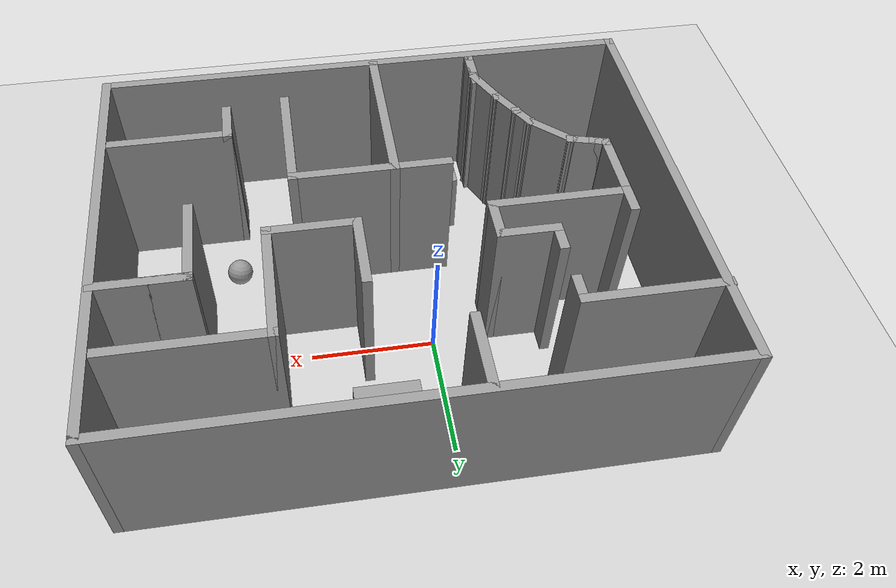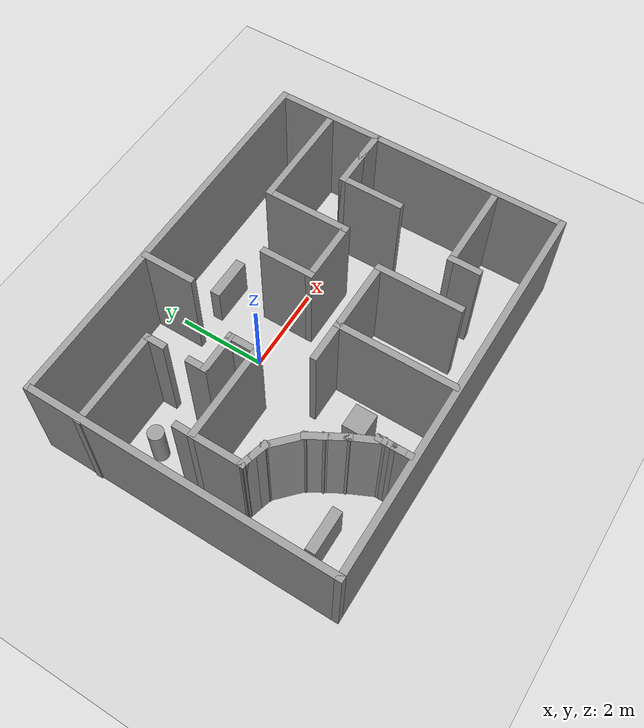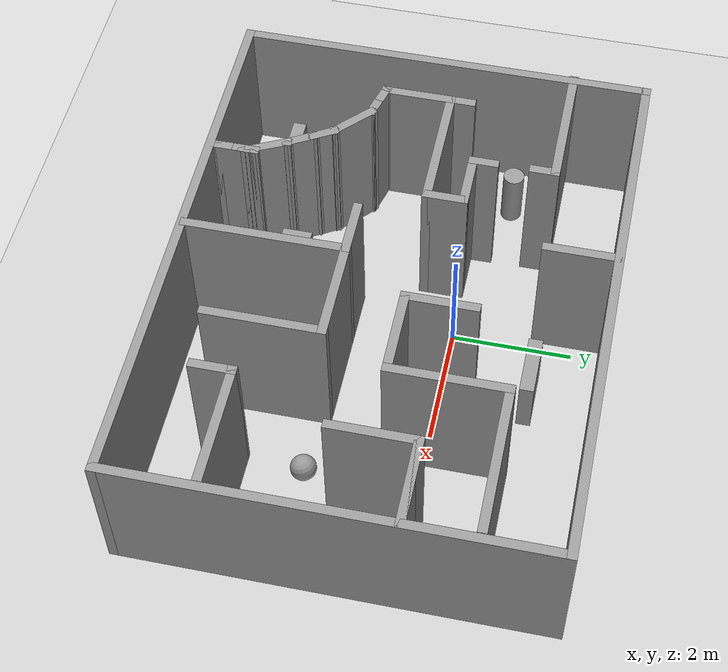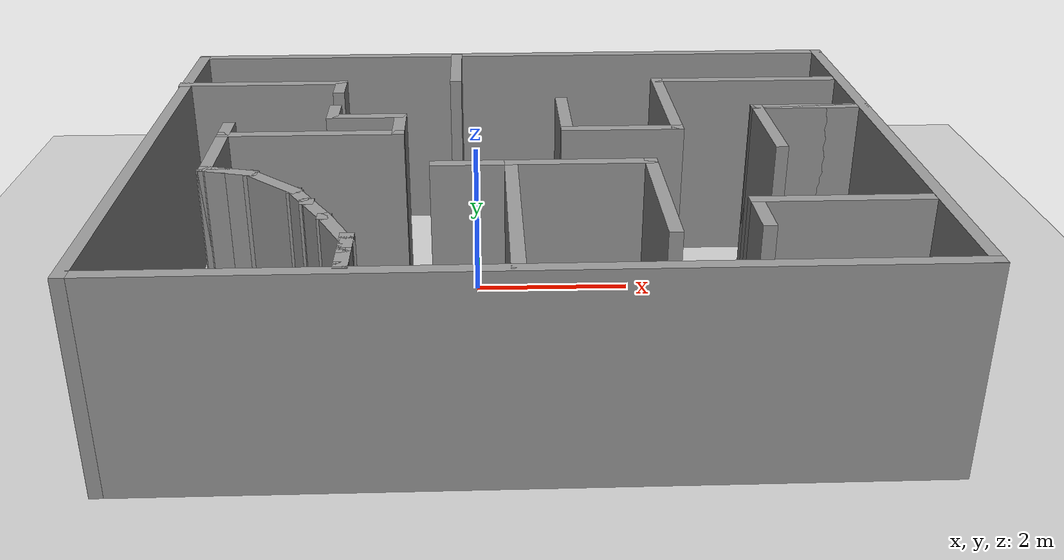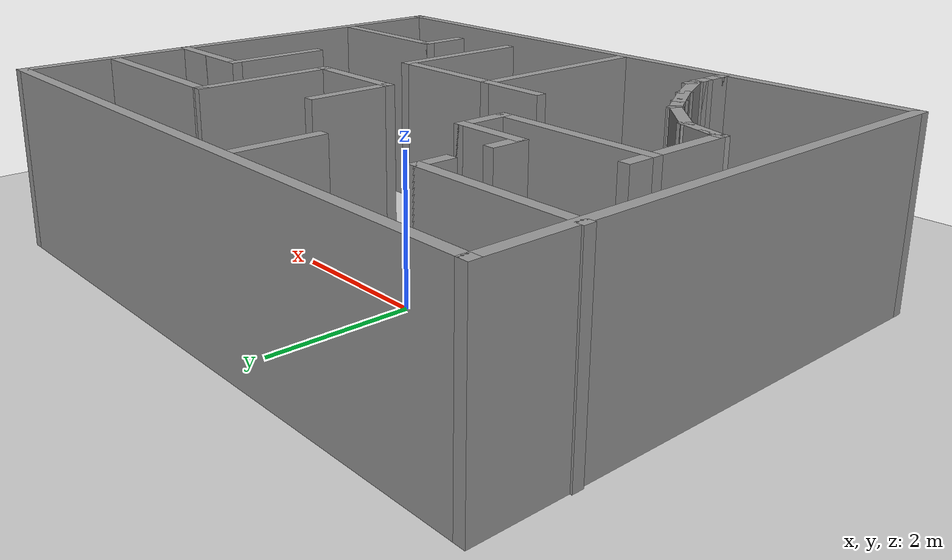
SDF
<sdf version="1.7">
 <world name="default">
  <light name="sun" type="directional">
   <pose>0 0 10 0 -0 0</pose>
   <diffuse>0.8 0.8 0.8 1</diffuse>
   <specular>0.2 0.2 0.2 1</specular>
   <attenuation>
    <range>1000</range>
    <constant>0.9</constant>
    <linear>0.01</linear>
    <quadratic>0.001</quadratic>
   </attenuation>
   <direction>-0.5 0.1 -0.9</direction>
   <spot><inner_angle>0</inner_angle><outer_angle>0</outer_angle><falloff>0</falloff></spot>
  </light>
  <model name="ground_plane">
   <static>1</static>
   <link name="link">
    <collision name="collision">
     <geometry><plane><normal>0 0 1</normal><size>100 100</size></plane></geometry>
     <surface><friction><ode><mu>100</mu><mu2>50</mu2></ode></friction></surface>
    </collision>
    <visual name="visual">
     <cast_shadows>0</cast_shadows>
     <geometry><plane><normal>0 0 1</normal><size>100 100</size></plane></geometry>
     <material>
      <script><uri>file://media/materials/scripts/gazebo.material</uri><name>Gazebo/Grey</name></script>
     </material>
    </visual>
   </link>
  </model>
  <gravity>0 0 -9.8</gravity>
  <magnetic_field>6e-06 2.3e-05 -4.2e-05</magnetic_field>
  <atmosphere type="adiabatic"/>
  <physics type="ode">
   <max_step_size>0.001</max_step_size>
   <real_time_factor>1</real_time_factor>
   <real_time_update_rate>1000</real_time_update_rate>
  </physics>
  <scene><ambient>0.4 0.4 0.4 1</ambient><background>0.7 0.7 0.7 1</background><shadows>1</shadows></scene>
  <audio><device>default</device></audio>
  <spherical_coordinates>
   <surface_model>EARTH_WGS84</surface_model>
   <latitude_deg>0</latitude_deg>
   <longitude_deg>0</longitude_deg>
   <elevation>0</elevation>
   <heading_deg>0</heading_deg>
  </spherical_coordinates>
  <model name="irregular">
   <pose>0.539158 -1.06341 0 0 -0 0</pose>
   <link name="Wall_0">
    <collision name="Wall_0_Collision">
     <geometry><box><size>9 0.15 2.5</size></box></geometry>
     <pose>0 0 1.25 0 -0 0</pose>
    </collision>
    <visual name="Wall_0_Visual">
     <pose>0 0 1.25 0 -0 0</pose>
     <geometry><box><size>9 0.15 2.5</size></box></geometry>
     <material>
      <script><uri>file://media/materials/scripts/gazebo.material</uri><name>Gazebo/Grey</name></script>
      <ambient>1 1 1 1</ambient>
     </material>
     <meta><layer>0</layer></meta>
    </visual>
    <pose>0.013104 3.57285 0 0 -0 0</pose>
   </link>
   <link name="Wall_1">
    <collision name="Wall_1_Collision">
     <geometry><box><size>7 0.15 2.5</size></box></geometry>
     <pose>0 0 1.25 0 -0 0</pose>
    </collision>
    <visual name="Wall_1_Visual">
     <pose>0 0 1.25 0 -0 0</pose>
     <geometry><box><size>7 0.15 2.5</size></box></geometry>
     <material>
      <script><uri>file://media/materials/scripts/gazebo.material</uri><name>Gazebo/Grey</name></script>
      <ambient>1 1 1 1</ambient>
     </material>
     <meta><layer>0</layer></meta>
    </visual>
    <pose>4.4381 0.147854 0 0 -0 -1.5708</pose>
   </link>
   <link name="Wall_10">
    <collision name="Wall_10_Collision">
     <geometry><box><size>1 0.15 2.5</size></box></geometry>
     <pose>0 0 1.25 0 -0 0</pose>
    </collision>
    <visual name="Wall_10_Visual">
     <pose>0 0 1.25 0 -0 0</pose>
     <geometry><box><size>1 0.15 2.5</size></box></geometry>
     <material>
      <script><uri>file://media/materials/scripts/gazebo.material</uri><name>Gazebo/Grey</name></script>
      <ambient>1 1 1 1</ambient>
     </material>
     <meta><layer>0</layer></meta>
    </visual>
    <pose>-1.89681 0.998306 0 0 -0 0</pose>
   </link>
   <link name="Wall_11">
    <collision name="Wall_11_Collision">
     <geometry><box><size>0.75 0.15 2.5</size></box></geometry>
     <pose>0 0 1.25 0 -0 0</pose>
    </collision>
    <visual name="Wall_11_Visual">
     <pose>0 0 1.25 0 -0 0</pose>
     <geometry><box><size>0.75 0.15 2.5</size></box></geometry>
     <material>
      <script><uri>file://media/materials/scripts/gazebo.material</uri><name>Gazebo/Grey</name></script>
      <ambient>1 1 1 1</ambient>
     </material>
     <meta><layer>0</layer></meta>
    </visual>
    <pose>-1.47181 0.698306 0 0 -0 -1.5708</pose>
   </link>
   <link name="Wall_12">
    <collision name="Wall_12_Collision">
     <geometry><box><size>2.25 0.15 2.5</size></box></geometry>
     <pose>0 0 1.25 0 -0 0</pose>
    </collision>
    <visual name="Wall_12_Visual">
     <pose>0 0 1.25 0 -0 0</pose>
     <geometry><box><size>2.25 0.15 2.5</size></box></geometry>
     <material>
      <script><uri>file://media/materials/scripts/gazebo.material</uri><name>Gazebo/Grey</name></script>
      <ambient>1 1 1 1</ambient>
     </material>
     <meta><layer>0</layer></meta>
    </visual>
    <pose>-2.52181 0.398306 0 0 -0 3.14159</pose>
   </link>
   <link name="Wall_120">
    <collision name="Wall_120_Collision">
     <geometry><box><size>0.6 0.15 2.5</size></box></geometry>
     <pose>0 0 1.25 0 -0 0</pose>
    </collision>
    <visual name="Wall_120_Visual">
     <pose>0 0 1.25 0 -0 0</pose>
     <geometry><box><size>0.6 0.15 2.5</size></box></geometry>
     <material>
      <script><uri>file://media/materials/scripts/gazebo.material</uri><name>Gazebo/Grey</name></script>
      <ambient>1 1 1 1</ambient>
     </material>
     <meta><layer>0</layer></meta>
    </visual>
    <pose>-3.25788 -0.78581 0 0 -0 -0.261799</pose>
   </link>
   <link name="Wall_121">
    <collision name="Wall_121_Collision">
     <geometry><box><size>0.897041 0.15 2.5</size></box></geometry>
     <pose>0 0 1.25 0 -0 0</pose>
    </collision>
    <visual name="Wall_121_Visual">
     <pose>0 0 1.25 0 -0 0</pose>
     <geometry><box><size>0.897041 0.15 2.5</size></box></geometry>
     <material>
      <script><uri>file://media/materials/scripts/gazebo.material</uri><name>Gazebo/Grey</name></script>
      <ambient>1 1 1 1</ambient>
     </material>
     <meta><layer>0</layer></meta>
    </visual>
    <pose>-2.76744 -1.09885 0 0 -0 -0.750745</pose>
   </link>
   <link name="Wall_122">
    <collision name="Wall_122_Collision">
     <geometry><box><size>0.5 0.15 2.5</size></box></geometry>
     <pose>0 0 1.25 0 -0 0</pose>
    </collision>
    <visual name="Wall_122_Visual">
     <pose>0 0 1.25 0 -0 0</pose>
     <geometry><box><size>0.5 0.15 2.5</size></box></geometry>
     <material>
      <script><uri>file://media/materials/scripts/gazebo.material</uri><name>Gazebo/Grey</name></script>
      <ambient>1 1 1 1</ambient>
     </material>
     <meta><layer>0</layer></meta>
    </visual>
    <pose>-2.40682 -1.50522 0 0 -0 -1.0472</pose>
   </link>
   <link name="Wall_123">
    <collision name="Wall_123_Collision">
     <geometry><box><size>0.6 0.15 2.5</size></box></geometry>
     <pose>0 0 1.25 0 -0 0</pose>
    </collision>
    <visual name="Wall_123_Visual">
     <pose>0 0 1.25 0 -0 0</pose>
     <geometry><box><size>0.6 0.15 2.5</size></box></geometry>
     <material>
      <script><uri>file://media/materials/scripts/gazebo.material</uri><name>Gazebo/Grey</name></script>
      <ambient>1 1 1 1</ambient>
     </material>
     <meta><layer>0</layer></meta>
    </visual>
    <pose>-2.20682 -1.85163 0 0 -0 -1.0472</pose>
   </link>
   <link name="Wall_124">
    <collision name="Wall_124_Collision">
     <geometry><box><size>0.788563 0.15 2.5</size></box></geometry>
     <pose>0 0 1.25 0 -0 0</pose>
    </collision>
    <visual name="Wall_124_Visual">
     <pose>0 0 1.25 0 -0 0</pose>
     <geometry><box><size>0.788563 0.15 2.5</size></box></geometry>
     <material>
      <script><uri>file://media/materials/scripts/gazebo.material</uri><name>Gazebo/Grey</name></script>
      <ambient>1 1 1 1</ambient>
     </material>
     <meta><layer>0</layer></meta>
    </visual>
    <pose>-1.95683 -2.33464 0 0 -0 -1.12558</pose>
   </link>
   <link name="Wall_15">
    <collision name="Wall_15_Collision">
     <geometry><box><size>0.5 0.15 2.5</size></box></geometry>
     <pose>0 0 1.25 0 -0 0</pose>
    </collision>
    <visual name="Wall_15_Visual">
     <pose>0 0 1.25 0 -0 0</pose>
     <geometry><box><size>0.5 0.15 2.5</size></box></geometry>
     <material>
      <script><uri>file://media/materials/scripts/gazebo.material</uri><name>Gazebo/Grey</name></script>
      <ambient>1 1 1 1</ambient>
     </material>
     <meta><layer>0</layer></meta>
    </visual>
    <pose>-3.57181 0.573306 0 0 -0 1.5708</pose>
   </link>
   <link name="Wall_17">
    <collision name="Wall_17_Collision">
     <geometry><box><size>1.25 0.15 2.5</size></box></geometry>
     <pose>0 0 1.25 0 -0 0</pose>
    </collision>
    <visual name="Wall_17_Visual">
     <pose>0 0 1.25 0 -0 0</pose>
     <geometry><box><size>1.25 0.15 2.5</size></box></geometry>
     <material>
      <script><uri>file://media/materials/scripts/gazebo.material</uri><name>Gazebo/Grey</name></script>
      <ambient>1 1 1 1</ambient>
     </material>
     <meta><layer>0</layer></meta>
    </visual>
    <pose>-3.57181 -0.151694 0 0 -0 -1.5708</pose>
   </link>
   <link name="Wall_2">
    <collision name="Wall_2_Collision">
     <geometry><box><size>9 0.15 2.5</size></box></geometry>
     <pose>0 0 1.25 0 -0 0</pose>
    </collision>
    <visual name="Wall_2_Visual">
     <pose>0 0 1.25 0 -0 0</pose>
     <geometry><box><size>9 0.15 2.5</size></box></geometry>
     <material>
      <script><uri>file://media/materials/scripts/gazebo.material</uri><name>Gazebo/Grey</name></script>
      <ambient>1 1 1 1</ambient>
     </material>
     <meta><layer>0</layer></meta>
    </visual>
    <pose>0.013104 -3.27715 0 0 -0 3.14159</pose>
   </link>
   <link name="Wall_27">
    <collision name="Wall_27_Collision">
     <geometry><box><size>2.75 0.15 2.5</size></box></geometry>
     <pose>0 0 1.25 0 -0 0</pose>
    </collision>
    <visual name="Wall_27_Visual">
     <pose>0 0 1.25 0 -0 0</pose>
     <geometry><box><size>2.75 0.15 2.5</size></box></geometry>
     <material>
      <script><uri>file://media/materials/scripts/gazebo.material</uri><name>Gazebo/Grey</name></script>
      <ambient>1 1 1 1</ambient>
     </material>
     <meta><layer>0</layer></meta>
    </visual>
    <pose>-0.135549 -1.92807 0 0 -0 -1.5708</pose>
   </link>
   <link name="Wall_29">
    <collision name="Wall_29_Collision">
     <geometry><box><size>1.75 0.15 2.5</size></box></geometry>
     <pose>0 0 1.25 0 -0 0</pose>
    </collision>
    <visual name="Wall_29_Visual">
     <pose>0 0 1.25 0 -0 0</pose>
     <geometry><box><size>1.75 0.15 2.5</size></box></geometry>
     <material>
      <script><uri>file://media/materials/scripts/gazebo.material</uri><name>Gazebo/Grey</name></script>
      <ambient>1 1 1 1</ambient>
     </material>
     <meta><layer>0</layer></meta>
    </visual>
    <pose>0.664451 -0.628071 0 0 -0 0</pose>
   </link>
   <link name="Wall_3">
    <collision name="Wall_3_Collision">
     <geometry><box><size>7 0.15 2.5</size></box></geometry>
     <pose>0 0 1.25 0 -0 0</pose>
    </collision>
    <visual name="Wall_3_Visual">
     <pose>0 0 1.25 0 -0 0</pose>
     <geometry><box><size>7 0.15 2.5</size></box></geometry>
     <material>
      <script><uri>file://media/materials/scripts/gazebo.material</uri><name>Gazebo/Grey</name></script>
      <ambient>1 1 1 1</ambient>
     </material>
     <meta><layer>0</layer></meta>
    </visual>
    <pose>-4.4119 0.147854 0 0 -0 1.5708</pose>
   </link>
   <link name="Wall_30">
    <collision name="Wall_30_Collision">
     <geometry><box><size>2 0.15 2.5</size></box></geometry>
     <pose>0 0 1.25 0 -0 0</pose>
    </collision>
    <visual name="Wall_30_Visual">
     <pose>0 0 1.25 0 -0 0</pose>
     <geometry><box><size>2 0.15 2.5</size></box></geometry>
     <material>
      <script><uri>file://media/materials/scripts/gazebo.material</uri><name>Gazebo/Grey</name></script>
      <ambient>1 1 1 1</ambient>
     </material>
     <meta><layer>0</layer></meta>
    </visual>
    <pose>1.46445 -1.55307 0 0 -0 -1.5708</pose>
   </link>
   <link name="Wall_32">
    <collision name="Wall_32_Collision">
     <geometry><box><size>2 0.15 2.5</size></box></geometry>
     <pose>0 0 1.25 0 -0 0</pose>
    </collision>
    <visual name="Wall_32_Visual">
     <pose>0 0 1.25 0 -0 0</pose>
     <geometry><box><size>2 0.15 2.5</size></box></geometry>
     <material>
      <script><uri>file://media/materials/scripts/gazebo.material</uri><name>Gazebo/Grey</name></script>
      <ambient>1 1 1 1</ambient>
     </material>
     <meta><layer>0</layer></meta>
    </visual>
    <pose>3.36049 -1.76493 0 0 -0 0</pose>
   </link>
   <link name="Wall_34">
    <collision name="Wall_34_Collision">
     <geometry><box><size>0.75 0.15 2.5</size></box></geometry>
     <pose>0 0 1.25 0 -0 0</pose>
    </collision>
    <visual name="Wall_34_Visual">
     <pose>0 0 1.25 0 -0 0</pose>
     <geometry><box><size>0.75 0.15 2.5</size></box></geometry>
     <material>
      <script><uri>file://media/materials/scripts/gazebo.material</uri><name>Gazebo/Grey</name></script>
      <ambient>1 1 1 1</ambient>
     </material>
     <meta><layer>0</layer></meta>
    </visual>
    <pose>2.43549 -2.06493 0 0 -0 -1.5708</pose>
   </link>
   <link name="Wall_36">
    <collision name="Wall_36_Collision">
     <geometry><box><size>1.25 0.15 2.5</size></box></geometry>
     <pose>0 0 1.25 0 -0 0</pose>
    </collision>
    <visual name="Wall_36_Visual">
     <pose>0 0 1.25 0 -0 0</pose>
     <geometry><box><size>1.25 0.15 2.5</size></box></geometry>
     <material>
      <script><uri>file://media/materials/scripts/gazebo.material</uri><name>Gazebo/Grey</name></script>
      <ambient>1 1 1 1</ambient>
     </material>
     <meta><layer>0</layer></meta>
    </visual>
    <pose>0.581544 1.00819 0 0 -0 -1.5708</pose>
   </link>
   <link name="Wall_37">
    <collision name="Wall_37_Collision">
     <geometry><box><size>1.5 0.15 2.5</size></box></geometry>
     <pose>0 0 1.25 0 -0 0</pose>
    </collision>
    <visual name="Wall_37_Visual">
     <pose>0 0 1.25 0 -0 0</pose>
     <geometry><box><size>1.5 0.15 2.5</size></box></geometry>
     <material>
      <script><uri>file://media/materials/scripts/gazebo.material</uri><name>Gazebo/Grey</name></script>
      <ambient>1 1 1 1</ambient>
     </material>
     <meta><layer>0</layer></meta>
    </visual>
    <pose>1.25654 0.458187 0 0 -0 0</pose>
   </link>
   <link name="Wall_38">
    <collision name="Wall_38_Collision">
     <geometry><box><size>2 0.15 2.5</size></box></geometry>
     <pose>0 0 1.25 0 -0 0</pose>
    </collision>
    <visual name="Wall_38_Visual">
     <pose>0 0 1.25 0 -0 0</pose>
     <geometry><box><size>2 0.15 2.5</size></box></geometry>
     <material>
      <script><uri>file://media/materials/scripts/gazebo.material</uri><name>Gazebo/Grey</name></script>
      <ambient>1 1 1 1</ambient>
     </material>
     <meta><layer>0</layer></meta>
    </visual>
    <pose>1.93154 1.38319 0 0 -0 1.5708</pose>
   </link>
   <link name="Wall_39">
    <collision name="Wall_39_Collision">
     <geometry><box><size>2.5 0.15 2.5</size></box></geometry>
     <pose>0 0 1.25 0 -0 0</pose>
    </collision>
    <visual name="Wall_39_Visual">
     <pose>0 0 1.25 0 -0 0</pose>
     <geometry><box><size>2.5 0.15 2.5</size></box></geometry>
     <material>
      <script><uri>file://media/materials/scripts/gazebo.material</uri><name>Gazebo/Grey</name></script>
      <ambient>1 1 1 1</ambient>
     </material>
     <meta><layer>0</layer></meta>
    </visual>
    <pose>3.10654 2.30819 0 0 -0 0</pose>
   </link>
   <link name="Wall_41">
    <collision name="Wall_41_Collision">
     <geometry><box><size>1.5 0.15 2.5</size></box></geometry>
     <pose>0 0 1.25 0 -0 0</pose>
    </collision>
    <visual name="Wall_41_Visual">
     <pose>0 0 1.25 0 -0 0</pose>
     <geometry><box><size>1.5 0.15 2.5</size></box></geometry>
     <material>
      <script><uri>file://media/materials/scripts/gazebo.material</uri><name>Gazebo/Grey</name></script>
      <ambient>1 1 1 1</ambient>
     </material>
     <meta><layer>0</layer></meta>
    </visual>
    <pose>3.74013 1.17341 0 0 -0 0</pose>
   </link>
   <link name="Wall_42">
    <collision name="Wall_42_Collision">
     <geometry><box><size>1.5 0.15 2.5</size></box></geometry>
     <pose>0 0 1.25 0 -0 0</pose>
    </collision>
    <visual name="Wall_42_Visual">
     <pose>0 0 1.25 0 -0 0</pose>
     <geometry><box><size>1.5 0.15 2.5</size></box></geometry>
     <material>
      <script><uri>file://media/materials/scripts/gazebo.material</uri><name>Gazebo/Grey</name></script>
      <ambient>1 1 1 1</ambient>
     </material>
     <meta><layer>0</layer></meta>
    </visual>
    <pose>3.74013 1.17341 0 0 -0 3.14159</pose>
   </link>
   <link name="Wall_43">
    <collision name="Wall_43_Collision">
     <geometry><box><size>1.5 0.15 2.5</size></box></geometry>
     <pose>0 0 1.25 0 -0 0</pose>
    </collision>
    <visual name="Wall_43_Visual">
     <pose>0 0 1.25 0 -0 0</pose>
     <geometry><box><size>1.5 0.15 2.5</size></box></geometry>
     <material>
      <script><uri>file://media/materials/scripts/gazebo.material</uri><name>Gazebo/Grey</name></script>
      <ambient>1 1 1 1</ambient>
     </material>
     <meta><layer>0</layer></meta>
    </visual>
    <pose>3.06513 0.498405 0 0 -0 -1.5708</pose>
   </link>
   <link name="Wall_45">
    <collision name="Wall_45_Collision">
     <geometry><box><size>1.25 0.15 2.5</size></box></geometry>
     <pose>0 0 1.25 0 -0 0</pose>
    </collision>
    <visual name="Wall_45_Visual">
     <pose>0 0 1.25 0 -0 0</pose>
     <geometry><box><size>1.25 0.15 2.5</size></box></geometry>
     <material>
      <script><uri>file://media/materials/scripts/gazebo.material</uri><name>Gazebo/Grey</name></script>
      <ambient>1 1 1 1</ambient>
     </material>
     <meta><layer>0</layer></meta>
    </visual>
    <pose>-0.800171 2.98456 0 0 -0 -1.5708</pose>
   </link>
   <link name="Wall_47">
    <collision name="Wall_47_Collision">
     <geometry><box><size>1 0.15 2.5</size></box></geometry>
     <pose>0 0 1.25 0 -0 0</pose>
    </collision>
    <visual name="Wall_47_Visual">
     <pose>0 0 1.25 0 -0 0</pose>
     <geometry><box><size>1 0.15 2.5</size></box></geometry>
     <material>
      <script><uri>file://media/materials/scripts/gazebo.material</uri><name>Gazebo/Grey</name></script>
      <ambient>1 1 1 1</ambient>
     </material>
     <meta><layer>0</layer></meta>
    </visual>
    <pose>-0.560549 -0.628071 0 0 -0 3.14159</pose>
   </link>
   <link name="Wall_49">
    <collision name="Wall_49_Collision">
     <geometry><box><size>0.15 0.15 2.5</size></box></geometry>
     <pose>0 0 1.25 0 -0 0</pose>
    </collision>
    <visual name="Wall_49_Visual">
     <pose>0 0 1.25 0 -0 0</pose>
     <geometry><box><size>0.15 0.15 2.5</size></box></geometry>
     <material>
      <script><uri>file://media/materials/scripts/gazebo.material</uri><name>Gazebo/Grey</name></script>
      <ambient>1 1 1 1</ambient>
     </material>
     <meta><layer>0</layer></meta>
    </visual>
    <pose>-3.57181 -0.701694 0 0 -0 0</pose>
   </link>
   <link name="Wall_5">
    <collision name="Wall_5_Collision">
     <geometry><box><size>2.25 0.15 2.5</size></box></geometry>
     <pose>0 0 1.25 0 -0 0</pose>
    </collision>
    <visual name="Wall_5_Visual">
     <pose>0 0 1.25 0 -0 0</pose>
     <geometry><box><size>2.25 0.15 2.5</size></box></geometry>
     <material>
      <script><uri>file://media/materials/scripts/gazebo.material</uri><name>Gazebo/Grey</name></script>
      <ambient>1 1 1 1</ambient>
     </material>
     <meta><layer>0</layer></meta>
    </visual>
    <pose>-3.3881 2.34524 0 0 -0 0</pose>
   </link>
   <link name="Wall_50">
    <collision name="Wall_50_Collision">
     <geometry><box><size>0.25 0.15 2.5</size></box></geometry>
     <pose>0 0 1.25 0 -0 0</pose>
    </collision>
    <visual name="Wall_50_Visual">
     <pose>0 0 1.25 0 -0 0</pose>
     <geometry><box><size>0.25 0.15 2.5</size></box></geometry>
     <material>
      <script><uri>file://media/materials/scripts/gazebo.material</uri><name>Gazebo/Grey</name></script>
      <ambient>1 1 1 1</ambient>
     </material>
     <meta><layer>0</layer></meta>
    </visual>
    <pose>-3.52351 -0.714635 0 0 -0 -0.261799</pose>
   </link>
   <link name="Wall_51">
    <collision name="Wall_51_Collision">
     <geometry><box><size>0.25 0.15 2.5</size></box></geometry>
     <pose>0 0 1.25 0 -0 0</pose>
    </collision>
    <visual name="Wall_51_Visual">
     <pose>0 0 1.25 0 -0 0</pose>
     <geometry><box><size>0.25 0.15 2.5</size></box></geometry>
     <material>
      <script><uri>file://media/materials/scripts/gazebo.material</uri><name>Gazebo/Grey</name></script>
      <ambient>1 1 1 1</ambient>
     </material>
     <meta><layer>0</layer></meta>
    </visual>
    <pose>-3.42692 -0.740517 0 0 -0 -0.261799</pose>
   </link>
   <link name="Wall_53">
    <collision name="Wall_53_Collision">
     <geometry><box><size>0.15 0.15 2.5</size></box></geometry>
     <pose>0 0 1.25 0 -0 0</pose>
    </collision>
    <visual name="Wall_53_Visual">
     <pose>0 0 1.25 0 -0 0</pose>
     <geometry><box><size>0.15 0.15 2.5</size></box></geometry>
     <material>
      <script><uri>file://media/materials/scripts/gazebo.material</uri><name>Gazebo/Grey</name></script>
      <ambient>1 1 1 1</ambient>
     </material>
     <meta><layer>0</layer></meta>
    </visual>
    <pose>-3.04055 -0.844044 0 0 -0 0</pose>
   </link>
   <link name="Wall_59">
    <collision name="Wall_59_Collision">
     <geometry><box><size>0.15 0.15 2.5</size></box></geometry>
     <pose>0 0 1.25 0 -0 0</pose>
    </collision>
    <visual name="Wall_59_Visual">
     <pose>0 0 1.25 0 -0 0</pose>
     <geometry><box><size>0.15 0.15 2.5</size></box></geometry>
     <material>
      <script><uri>file://media/materials/scripts/gazebo.material</uri><name>Gazebo/Grey</name></script>
      <ambient>1 1 1 1</ambient>
     </material>
     <meta><layer>0</layer></meta>
    </visual>
    <pose>-2.49432 -1.35366 0 0 -0 0</pose>
   </link>
   <link name="Wall_6">
    <collision name="Wall_6_Collision">
     <geometry><box><size>0.5 0.15 2.5</size></box></geometry>
     <pose>0 0 1.25 0 -0 0</pose>
    </collision>
    <visual name="Wall_6_Visual">
     <pose>0 0 1.25 0 -0 0</pose>
     <geometry><box><size>0.5 0.15 2.5</size></box></geometry>
     <material>
      <script><uri>file://media/materials/scripts/gazebo.material</uri><name>Gazebo/Grey</name></script>
      <ambient>1 1 1 1</ambient>
     </material>
     <meta><layer>0</layer></meta>
    </visual>
    <pose>-2.3381 2.17024 0 0 -0 -1.5708</pose>
   </link>
   <link name="Wall_61">
    <collision name="Wall_61_Collision">
     <geometry><box><size>0.15 0.15 2.5</size></box></geometry>
     <pose>0 0 1.25 0 -0 0</pose>
    </collision>
    <visual name="Wall_61_Visual">
     <pose>0 0 1.25 0 -0 0</pose>
     <geometry><box><size>0.15 0.15 2.5</size></box></geometry>
     <material>
      <script><uri>file://media/materials/scripts/gazebo.material</uri><name>Gazebo/Grey</name></script>
      <ambient>1 1 1 1</ambient>
     </material>
     <meta><layer>0</layer></meta>
    </visual>
    <pose>-2.31933 -1.65677 0 0 -0 0</pose>
   </link>
   <link name="Wall_62">
    <collision name="Wall_62_Collision">
     <geometry><box><size>0.15 0.15 2.5</size></box></geometry>
     <pose>0 0 1.25 0 -0 0</pose>
    </collision>
    <visual name="Wall_62_Visual">
     <pose>0 0 1.25 0 -0 0</pose>
     <geometry><box><size>0.15 0.15 2.5</size></box></geometry>
     <material>
      <script><uri>file://media/materials/scripts/gazebo.material</uri><name>Gazebo/Grey</name></script>
      <ambient>1 1 1 1</ambient>
     </material>
     <meta><layer>0</layer></meta>
    </visual>
    <pose>-2.31933 -1.65677 0 0 -0 0</pose>
   </link>
   <link name="Wall_65">
    <collision name="Wall_65_Collision">
     <geometry><box><size>0.15 0.15 2.5</size></box></geometry>
     <pose>0 0 1.25 0 -0 0</pose>
    </collision>
    <visual name="Wall_65_Visual">
     <pose>0 0 1.25 0 -0 0</pose>
     <geometry><box><size>0.15 0.15 2.5</size></box></geometry>
     <material>
      <script><uri>file://media/materials/scripts/gazebo.material</uri><name>Gazebo/Grey</name></script>
      <ambient>1 1 1 1</ambient>
     </material>
     <meta><layer>0</layer></meta>
    </visual>
    <pose>-2.09432 -2.04648 0 0 -0 0</pose>
   </link>
   <link name="Wall_66">
    <collision name="Wall_66_Collision">
     <geometry><box><size>0.15 0.15 2.5</size></box></geometry>
     <pose>0 0 1.25 0 -0 0</pose>
    </collision>
    <visual name="Wall_66_Visual">
     <pose>0 0 1.25 0 -0 0</pose>
     <geometry><box><size>0.15 0.15 2.5</size></box></geometry>
     <material>
      <script><uri>file://media/materials/scripts/gazebo.material</uri><name>Gazebo/Grey</name></script>
      <ambient>1 1 1 1</ambient>
     </material>
     <meta><layer>0</layer></meta>
    </visual>
    <pose>-2.09432 -2.04648 0 0 -0 0</pose>
   </link>
   <link name="Wall_70">
    <collision name="Wall_70_Collision">
     <geometry><box><size>0.15 0.15 2.5</size></box></geometry>
     <pose>0 0 1.25 0 -0 0</pose>
    </collision>
    <visual name="Wall_70_Visual">
     <pose>0 0 1.25 0 -0 0</pose>
     <geometry><box><size>0.15 0.15 2.5</size></box></geometry>
     <material>
      <script><uri>file://media/materials/scripts/gazebo.material</uri><name>Gazebo/Grey</name></script>
      <ambient>1 1 1 1</ambient>
     </material>
     <meta><layer>0</layer></meta>
    </visual>
    <pose>-1.81933 -2.5228 0 0 -0 0</pose>
   </link>
   <link name="Wall_71">
    <collision name="Wall_71_Collision">
     <geometry><box><size>0.15 0.15 2.5</size></box></geometry>
     <pose>0 0 1.25 0 -0 0</pose>
    </collision>
    <visual name="Wall_71_Visual">
     <pose>0 0 1.25 0 -0 0</pose>
     <geometry><box><size>0.15 0.15 2.5</size></box></geometry>
     <material>
      <script><uri>file://media/materials/scripts/gazebo.material</uri><name>Gazebo/Grey</name></script>
      <ambient>1 1 1 1</ambient>
     </material>
     <meta><layer>0</layer></meta>
    </visual>
    <pose>-1.81933 -2.5228 0 0 -0 0</pose>
   </link>
   <link name="Wall_72">
    <collision name="Wall_72_Collision">
     <geometry><box><size>0.25 0.15 2.5</size></box></geometry>
     <pose>0 0 1.25 0 -0 0</pose>
    </collision>
    <visual name="Wall_72_Visual">
     <pose>0 0 1.25 0 -0 0</pose>
     <geometry><box><size>0.25 0.15 2.5</size></box></geometry>
     <material>
      <script><uri>file://media/materials/scripts/gazebo.material</uri><name>Gazebo/Grey</name></script>
      <ambient>1 1 1 1</ambient>
     </material>
     <meta><layer>0</layer></meta>
    </visual>
    <pose>-1.81933 -2.5728 0 0 -0 -1.5708</pose>
   </link>
   <link name="Wall_73">
    <collision name="Wall_73_Collision">
     <geometry><box><size>0.25 0.15 2.5</size></box></geometry>
     <pose>0 0 1.25 0 -0 0</pose>
    </collision>
    <visual name="Wall_73_Visual">
     <pose>0 0 1.25 0 -0 0</pose>
     <geometry><box><size>0.25 0.15 2.5</size></box></geometry>
     <material>
      <script><uri>file://media/materials/scripts/gazebo.material</uri><name>Gazebo/Grey</name></script>
      <ambient>1 1 1 1</ambient>
     </material>
     <meta><layer>0</layer></meta>
    </visual>
    <pose>-1.81933 -2.6728 0 0 -0 -1.5708</pose>
   </link>
   <link name="Wall_74">
    <collision name="Wall_74_Collision">
     <geometry><box><size>0.25 0.15 2.5</size></box></geometry>
     <pose>0 0 1.25 0 -0 0</pose>
    </collision>
    <visual name="Wall_74_Visual">
     <pose>0 0 1.25 0 -0 0</pose>
     <geometry><box><size>0.25 0.15 2.5</size></box></geometry>
     <material>
      <script><uri>file://media/materials/scripts/gazebo.material</uri><name>Gazebo/Grey</name></script>
      <ambient>1 1 1 1</ambient>
     </material>
     <meta><layer>0</layer></meta>
    </visual>
    <pose>-1.81933 -2.7728 0 0 -0 -1.5708</pose>
   </link>
   <link name="Wall_75">
    <collision name="Wall_75_Collision">
     <geometry><box><size>0.5 0.15 2.5</size></box></geometry>
     <pose>0 0 1.25 0 -0 0</pose>
    </collision>
    <visual name="Wall_75_Visual">
     <pose>0 0 1.25 0 -0 0</pose>
     <geometry><box><size>0.5 0.15 2.5</size></box></geometry>
     <material>
      <script><uri>file://media/materials/scripts/gazebo.material</uri><name>Gazebo/Grey</name></script>
      <ambient>1 1 1 1</ambient>
     </material>
     <meta><layer>0</layer></meta>
    </visual>
    <pose>-1.81933 -2.9978 0 0 -0 -1.5708</pose>
   </link>
   <link name="Wall_76">
    <collision name="Wall_76_Collision">
     <geometry><box><size>0.15 0.15 2.5</size></box></geometry>
     <pose>0 0 1.25 0 -0 0</pose>
    </collision>
    <visual name="Wall_76_Visual">
     <pose>0 0 1.25 0 -0 0</pose>
     <geometry><box><size>0.15 0.15 2.5</size></box></geometry>
     <material>
      <script><uri>file://media/materials/scripts/gazebo.material</uri><name>Gazebo/Grey</name></script>
      <ambient>1 1 1 1</ambient>
     </material>
     <meta><layer>0</layer></meta>
    </visual>
    <pose>-1.81933 -3.1728 0 0 -0 0</pose>
   </link>
   <link name="Wall_9">
    <collision name="Wall_9_Collision">
     <geometry><box><size>0.5 0.15 2.5</size></box></geometry>
     <pose>0 0 1.25 0 -0 0</pose>
    </collision>
    <visual name="Wall_9_Visual">
     <pose>0 0 1.25 0 -0 0</pose>
     <geometry><box><size>0.5 0.15 2.5</size></box></geometry>
     <material>
      <script><uri>file://media/materials/scripts/gazebo.material</uri><name>Gazebo/Grey</name></script>
      <ambient>1 1 1 1</ambient>
     </material>
     <meta><layer>0</layer></meta>
    </visual>
    <pose>-2.32181 1.17331 0 0 -0 -1.5708</pose>
   </link>
   <static>1</static>
  </model>
  <model name="unit_box">
   <pose>0.960828 1.42075 0.499997 1e-06 6e-06 -1e-06</pose>
   <link name="link">
    <inertial>
     <mass>1</mass>
     <inertia>
      <ixx>0.166667</ixx>
      <ixy>0</ixy>
      <ixz>0</ixz>
      <iyy>0.166667</iyy>
      <iyz>0</iyz>
      <izz>0.166667</izz>
     </inertia>
    </inertial>
    <collision name="collision"><geometry><box><size>1 0.23439 1</size></box></geometry></collision>
    <visual name="visual">
     <geometry><box><size>1 0.23439 1</size></box></geometry>
     <material>
      <script><name>Gazebo/Grey</name><uri>file://media/materials/scripts/gazebo.material</uri></script>
     </material>
    </visual>
   </link>
  </model>
  <model name="unit_box_0">
   <pose>-2.82513 -3.39024 0.5 0 -0 1e-06</pose>
   <link name="link">
    <inertial>
     <mass>1</mass>
     <inertia>
      <ixx>0.166667</ixx>
      <ixy>0</ixy>
      <ixz>0</ixz>
      <iyy>0.166667</iyy>
      <iyz>0</iyz>
      <izz>0.166667</izz>
     </inertia>
    </inertial>
    <collision name="collision"><geometry><box><size>1 0.22973 1</size></box></geometry></collision>
    <visual name="visual">
     <geometry><box><size>1 0.22973 1</size></box></geometry>
     <material>
      <script><name>Gazebo/Grey</name><uri>file://media/materials/scripts/gazebo.material</uri></script>
     </material>
    </visual>
   </link>
  </model>
  <model name="unit_sphere">
   <pose>1.17648 -2.66118 0.172343 0 -0 0</pose>
   <link name="link">
    <inertial>
     <mass>1</mass>
     <inertia><ixx>0.1</ixx><ixy>0</ixy><ixz>0</ixz><iyy>0.1</iyy><iyz>0</iyz><izz>0.1</izz></inertia>
    </inertial>
    <collision name="collision"><geometry><sphere><radius>0.172343</radius></sphere></geometry></collision>
    <visual name="visual">
     <geometry><sphere><radius>0.172343</radius></sphere></geometry>
     <material>
      <script><name>Gazebo/Grey</name><uri>file://media/materials/scripts/gazebo.material</uri></script>
     </material>
    </visual>
   </link>
  </model>
  <model name="unit_cylinder">
   <pose>-2.88385 0.519059 0.499995 0 -0 5e-06</pose>
   <link name="link">
    <inertial>
     <mass>1</mass>
     <inertia><ixx>0.145833</ixx><ixy>0</ixy><ixz>0</ixz><iyy>0.145833</iyy><iyz>0</iyz><izz>0.125</izz></inertia>
    </inertial>
    <collision name="collision">
     <geometry><cylinder><radius>0.178076</radius><length>1</length></cylinder></geometry>
    </collision>
    <visual name="visual">
     <geometry><cylinder><radius>0.178076</radius><length>1</length></cylinder></geometry>
     <material>
      <script><name>Gazebo/Grey</name><uri>file://media/materials/scripts/gazebo.material</uri></script>
     </material>
    </visual>
   </link>
  </model>
  <model name="unit_sphere_0">
   <pose>3.0802 -1.82216 0.21221 0.269772 -0.166986 -0.022713</pose>
   <link name="link">
    <inertial>
     <mass>1</mass>
     <inertia><ixx>0.1</ixx><ixy>0</ixy><ixz>0</ixz><iyy>0.1</iyy><iyz>0</iyz><izz>0.1</izz></inertia>
    </inertial>
    <collision name="collision"><geometry><sphere><radius>0.21221</radius></sphere></geometry></collision>
    <visual name="visual">
     <geometry><sphere><radius>0.21221</radius></sphere></geometry>
     <material>
      <script><name>Gazebo/Grey</name><uri>file://media/materials/scripts/gazebo.material</uri></script>
     </material>
    </visual>
   </link>
  </model>
  <model name="unit_box_1">
   <pose>-0.552037 -2.81783 0.576015 0 -1e-06 0.000106</pose>
   <link name="link">
    <inertial>
     <mass>1</mass>
     <inertia>
      <ixx>0.166667</ixx>
      <ixy>0</ixy>
      <ixz>0</ixz>
      <iyy>0.166667</iyy>
      <iyz>0</iyz>
      <izz>0.166667</izz>
     </inertia>
    </inertial>
    <collision name="collision"><geometry><box><size>0.561829 0.496494 1.15203</size></box></geometry></collision>
    <visual name="visual">
     <geometry><box><size>0.561829 0.496494 1.15203</size></box></geometry>
     <material>
      <script><name>Gazebo/Grey</name><uri>file://media/materials/scripts/gazebo.material</uri></script>
     </material>
    </visual>
   </link>
  </model>
 </world>
</sdf>
